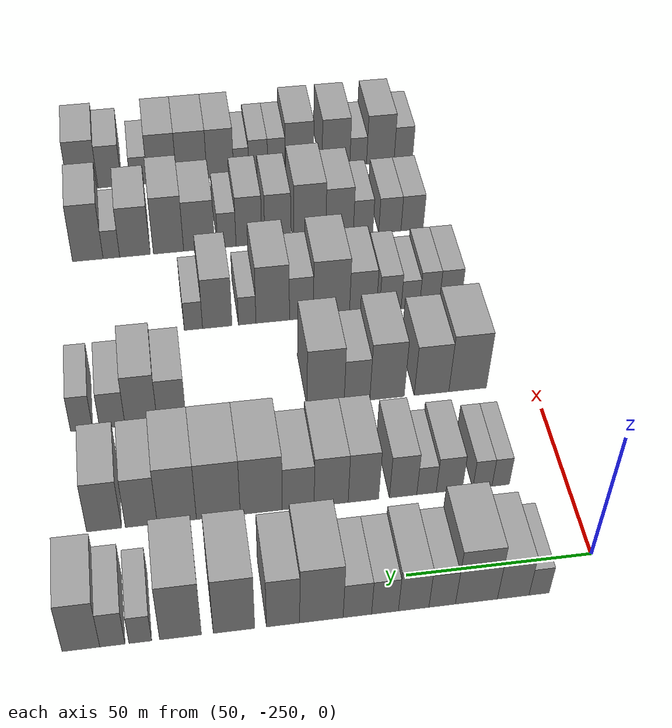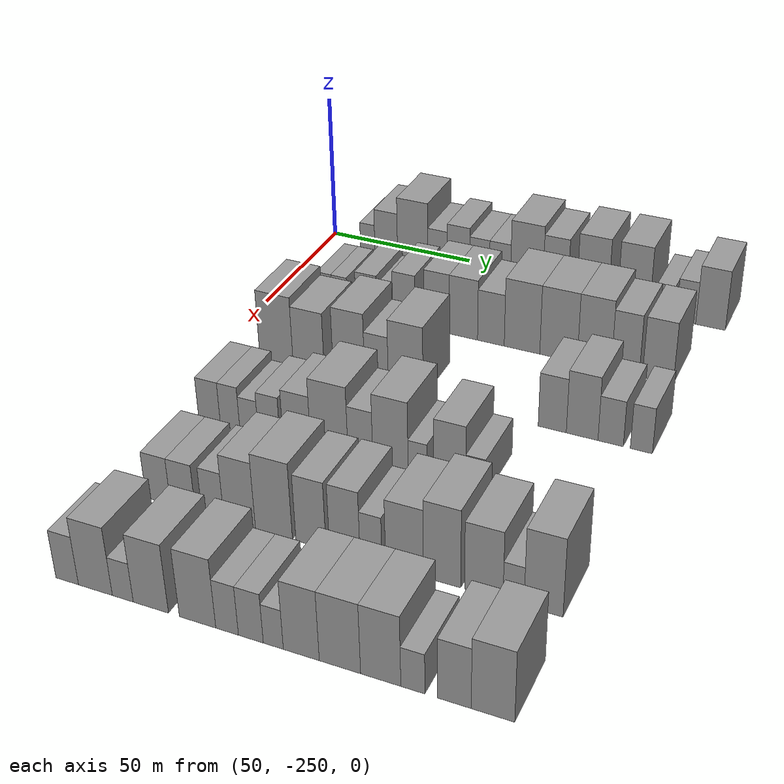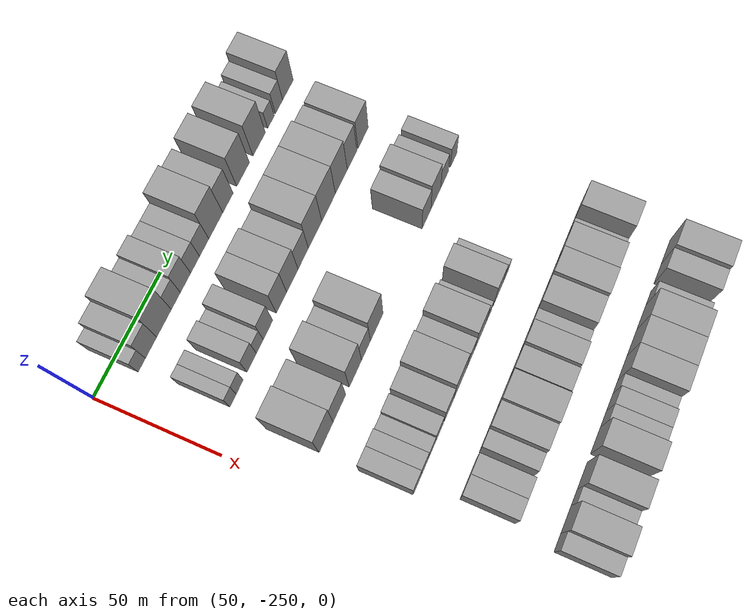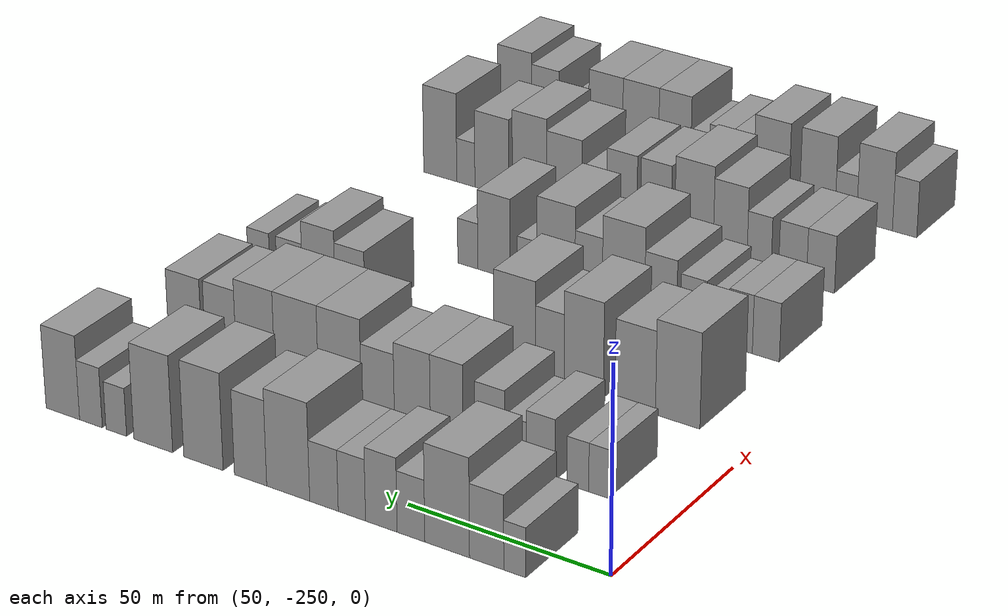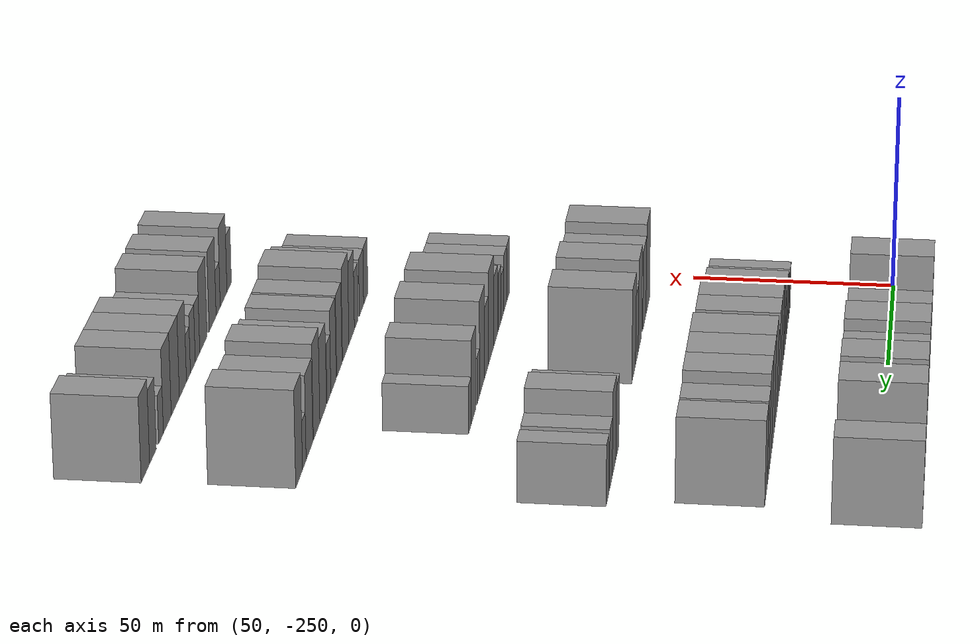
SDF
<sdf version="1.6">
 <world name="default">
  <model name="building_34">
   <static>1</static>
   <pose>50.0000 -233.0142 0 0.000000 0.000000 0.000000</pose>
   <link name="link">
    <pose>0 0 6.00 0 0 0</pose>
    <collision name="collision"><geometry><box><size>20.0000 5.3620 12.0000</size></box></geometry></collision>
    <visual name="visual">
     <cast_shadows>0</cast_shadows>
     <geometry><box><size>20.0000 5.3620 12.0000</size></box></geometry>
     <material>
      <script>
       <uri>model://grey_wall/materials/scripts</uri>
       <uri>model://grey_wall/materials/textures</uri>
       <name>vrc/grey_wall</name>
      </script>
     </material>
    </visual>
   </link>
  </model>
  <model name="building_35">
   <static>1</static>
   <pose>50.0000 -226.1422 0 0.000000 0.000000 0.000000</pose>
   <link name="link">
    <pose>0 0 9.00 0 0 0</pose>
    <collision name="collision"><geometry><box><size>20.0000 8.3820 18.0000</size></box></geometry></collision>
    <visual name="visual">
     <cast_shadows>0</cast_shadows>
     <geometry><box><size>20.0000 8.3820 18.0000</size></box></geometry>
     <material>
      <script>
       <uri>model://grey_wall/materials/scripts</uri>
       <uri>model://grey_wall/materials/textures</uri>
       <name>vrc/grey_wall</name>
      </script>
     </material>
    </visual>
   </link>
  </model>
  <model name="building_36">
   <static>1</static>
   <pose>50.0000 -216.4111 0 0.000000 0.000000 0.000000</pose>
   <link name="link">
    <pose>0 0 12.00 0 0 0</pose>
    <collision name="collision"><geometry><box><size>20.0000 11.0804 24.0000</size></box></geometry></collision>
    <visual name="visual">
     <cast_shadows>0</cast_shadows>
     <geometry><box><size>20.0000 11.0804 24.0000</size></box></geometry>
     <material>
      <script>
       <uri>model://grey_wall/materials/scripts</uri>
       <uri>model://grey_wall/materials/textures</uri>
       <name>vrc/grey_wall</name>
      </script>
     </material>
    </visual>
   </link>
  </model>
  <model name="building_37">
   <static>1</static>
   <pose>50.0000 -207.3943 0 0.000000 0.000000 0.000000</pose>
   <link name="link">
    <pose>0 0 7.50 0 0 0</pose>
    <collision name="collision"><geometry><box><size>20.0000 6.9532 15.0000</size></box></geometry></collision>
    <visual name="visual">
     <cast_shadows>0</cast_shadows>
     <geometry><box><size>20.0000 6.9532 15.0000</size></box></geometry>
     <material>
      <script>
       <uri>model://grey_wall/materials/scripts</uri>
       <uri>model://grey_wall/materials/textures</uri>
       <name>vrc/grey_wall</name>
      </script>
     </material>
    </visual>
   </link>
  </model>
  <model name="building_38">
   <static>1</static>
   <pose>50.0000 -199.9215 0 0.000000 0.000000 0.000000</pose>
   <link name="link">
    <pose>0 0 9.00 0 0 0</pose>
    <collision name="collision"><geometry><box><size>20.0000 7.9923 18.0000</size></box></geometry></collision>
    <visual name="visual">
     <cast_shadows>0</cast_shadows>
     <geometry><box><size>20.0000 7.9923 18.0000</size></box></geometry>
     <material>
      <script>
       <uri>model://grey_wall/materials/scripts</uri>
       <uri>model://grey_wall/materials/textures</uri>
       <name>vrc/grey_wall</name>
      </script>
     </material>
    </visual>
   </link>
  </model>
  <model name="building_39">
   <static>1</static>
   <pose>50.0000 -192.4334 0 0.000000 0.000000 0.000000</pose>
   <link name="link">
    <pose>0 0 7.50 0 0 0</pose>
    <collision name="collision"><geometry><box><size>20.0000 6.9839 15.0000</size></box></geometry></collision>
    <visual name="visual">
     <cast_shadows>0</cast_shadows>
     <geometry><box><size>20.0000 6.9839 15.0000</size></box></geometry>
     <material>
      <script>
       <uri>model://grey_wall/materials/scripts</uri>
       <uri>model://grey_wall/materials/textures</uri>
       <name>vrc/grey_wall</name>
      </script>
     </material>
    </visual>
   </link>
  </model>
  <model name="building_40">
   <static>1</static>
   <pose>50.0000 -185.2547 0 0.000000 0.000000 0.000000</pose>
   <link name="link">
    <pose>0 0 7.50 0 0 0</pose>
    <collision name="collision"><geometry><box><size>20.0000 7.3734 15.0000</size></box></geometry></collision>
    <visual name="visual">
     <cast_shadows>0</cast_shadows>
     <geometry><box><size>20.0000 7.3734 15.0000</size></box></geometry>
     <material>
      <script>
       <uri>model://grey_wall/materials/scripts</uri>
       <uri>model://grey_wall/materials/textures</uri>
       <name>vrc/grey_wall</name>
      </script>
     </material>
    </visual>
   </link>
  </model>
  <model name="building_41">
   <static>1</static>
   <pose>50.0000 -175.9584 0 0.000000 0.000000 0.000000</pose>
   <link name="link">
    <pose>0 0 12.00 0 0 0</pose>
    <collision name="collision"><geometry><box><size>20.0000 11.2193 24.0000</size></box></geometry></collision>
    <visual name="visual">
     <cast_shadows>0</cast_shadows>
     <geometry><box><size>20.0000 11.2193 24.0000</size></box></geometry>
     <material>
      <script>
       <uri>model://grey_wall/materials/scripts</uri>
       <uri>model://grey_wall/materials/textures</uri>
       <name>vrc/grey_wall</name>
      </script>
     </material>
    </visual>
   </link>
  </model>
  <model name="building_42">
   <static>1</static>
   <pose>50.0000 -166.0863 0 0.000000 0.000000 0.000000</pose>
   <link name="link">
    <pose>0 0 10.50 0 0 0</pose>
    <collision name="collision"><geometry><box><size>20.0000 8.5249 21.0000</size></box></geometry></collision>
    <visual name="visual">
     <cast_shadows>0</cast_shadows>
     <geometry><box><size>20.0000 8.5249 21.0000</size></box></geometry>
     <material>
      <script>
       <uri>model://grey_wall/materials/scripts</uri>
       <uri>model://grey_wall/materials/textures</uri>
       <name>vrc/grey_wall</name>
      </script>
     </material>
    </visual>
   </link>
  </model>
  <model name="building_43">
   <static>1</static>
   <pose>50.0000 -153.5417 0 0.000000 0.000000 0.000000</pose>
   <link name="link">
    <pose>0 0 12.00 0 0 0</pose>
    <collision name="collision"><geometry><box><size>20.0000 10.5641 24.0000</size></box></geometry></collision>
    <visual name="visual">
     <cast_shadows>0</cast_shadows>
     <geometry><box><size>20.0000 10.5641 24.0000</size></box></geometry>
     <material>
      <script>
       <uri>model://grey_wall/materials/scripts</uri>
       <uri>model://grey_wall/materials/textures</uri>
       <name>vrc/grey_wall</name>
      </script>
     </material>
    </visual>
   </link>
  </model>
  <model name="building_44">
   <static>1</static>
   <pose>50.0000 -139.9636 0 0.000000 0.000000 0.000000</pose>
   <link name="link">
    <pose>0 0 12.00 0 0 0</pose>
    <collision name="collision"><geometry><box><size>20.0000 10.5922 24.0000</size></box></geometry></collision>
    <visual name="visual">
     <cast_shadows>0</cast_shadows>
     <geometry><box><size>20.0000 10.5922 24.0000</size></box></geometry>
     <material>
      <script>
       <uri>model://grey_wall/materials/scripts</uri>
       <uri>model://grey_wall/materials/textures</uri>
       <name>vrc/grey_wall</name>
      </script>
     </material>
    </visual>
   </link>
  </model>
  <model name="building_45">
   <static>1</static>
   <pose>50.0000 -129.8153 0 0.000000 0.000000 0.000000</pose>
   <link name="link">
    <pose>0 0 6.00 0 0 0</pose>
    <collision name="collision"><geometry><box><size>20.0000 5.7045 12.0000</size></box></geometry></collision>
    <visual name="visual">
     <cast_shadows>0</cast_shadows>
     <geometry><box><size>20.0000 5.7045 12.0000</size></box></geometry>
     <material>
      <script>
       <uri>model://grey_wall/materials/scripts</uri>
       <uri>model://grey_wall/materials/textures</uri>
       <name>vrc/grey_wall</name>
      </script>
     </material>
    </visual>
   </link>
  </model>
  <model name="building_46">
   <static>1</static>
   <pose>50.0000 -122.7985 0 0.000000 0.000000 0.000000</pose>
   <link name="link">
    <pose>0 0 7.50 0 0 0</pose>
    <collision name="collision"><geometry><box><size>20.0000 6.3290 15.0000</size></box></geometry></collision>
    <visual name="visual">
     <cast_shadows>0</cast_shadows>
     <geometry><box><size>20.0000 6.3290 15.0000</size></box></geometry>
     <material>
      <script>
       <uri>model://grey_wall/materials/scripts</uri>
       <uri>model://grey_wall/materials/textures</uri>
       <name>vrc/grey_wall</name>
      </script>
     </material>
    </visual>
   </link>
  </model>
  <model name="building_47">
   <static>1</static>
   <pose>50.0000 -114.9309 0 0.000000 0.000000 0.000000</pose>
   <link name="link">
    <pose>0 0 10.50 0 0 0</pose>
    <collision name="collision"><geometry><box><size>20.0000 9.4061 21.0000</size></box></geometry></collision>
    <visual name="visual">
     <cast_shadows>0</cast_shadows>
     <geometry><box><size>20.0000 9.4061 21.0000</size></box></geometry>
     <material>
      <script>
       <uri>model://grey_wall/materials/scripts</uri>
       <uri>model://grey_wall/materials/textures</uri>
       <name>vrc/grey_wall</name>
      </script>
     </material>
    </visual>
   </link>
  </model>
  <model name="building_157">
   <static>1</static>
   <pose>85.0000 -231.4846 0 0.000000 0.000000 0.000000</pose>
   <link name="link">
    <pose>0 0 6.00 0 0 0</pose>
    <collision name="collision"><geometry><box><size>20.0000 4.9145 12.0000</size></box></geometry></collision>
    <visual name="visual">
     <cast_shadows>0</cast_shadows>
     <geometry><box><size>20.0000 4.9145 12.0000</size></box></geometry>
     <material>
      <script>
       <uri>model://grey_wall/materials/scripts</uri>
       <uri>model://grey_wall/materials/textures</uri>
       <name>vrc/grey_wall</name>
      </script>
     </material>
    </visual>
   </link>
  </model>
  <model name="building_158">
   <static>1</static>
   <pose>85.0000 -226.3136 0 0.000000 0.000000 0.000000</pose>
   <link name="link">
    <pose>0 0 6.00 0 0 0</pose>
    <collision name="collision"><geometry><box><size>20.0000 5.4275 12.0000</size></box></geometry></collision>
    <visual name="visual">
     <cast_shadows>0</cast_shadows>
     <geometry><box><size>20.0000 5.4275 12.0000</size></box></geometry>
     <material>
      <script>
       <uri>model://grey_wall/materials/scripts</uri>
       <uri>model://grey_wall/materials/textures</uri>
       <name>vrc/grey_wall</name>
      </script>
     </material>
    </visual>
   </link>
  </model>
  <model name="building_159">
   <static>1</static>
   <pose>85.0000 -216.9307 0 0.000000 0.000000 0.000000</pose>
   <link name="link">
    <pose>0 0 7.50 0 0 0</pose>
    <collision name="collision"><geometry><box><size>20.0000 7.3382 15.0000</size></box></geometry></collision>
    <visual name="visual">
     <cast_shadows>0</cast_shadows>
     <geometry><box><size>20.0000 7.3382 15.0000</size></box></geometry>
     <material>
      <script>
       <uri>model://grey_wall/materials/scripts</uri>
       <uri>model://grey_wall/materials/textures</uri>
       <name>vrc/grey_wall</name>
      </script>
     </material>
    </visual>
   </link>
  </model>
  <model name="building_160">
   <static>1</static>
   <pose>85.0000 -210.5316 0 0.000000 0.000000 0.000000</pose>
   <link name="link">
    <pose>0 0 6.00 0 0 0</pose>
    <collision name="collision"><geometry><box><size>20.0000 5.4600 12.0000</size></box></geometry></collision>
    <visual name="visual">
     <cast_shadows>0</cast_shadows>
     <geometry><box><size>20.0000 5.4600 12.0000</size></box></geometry>
     <material>
      <script>
       <uri>model://grey_wall/materials/scripts</uri>
       <uri>model://grey_wall/materials/textures</uri>
       <name>vrc/grey_wall</name>
      </script>
     </material>
    </visual>
   </link>
  </model>
  <model name="building_161">
   <static>1</static>
   <pose>85.0000 -203.9703 0 0.000000 0.000000 0.000000</pose>
   <link name="link">
    <pose>0 0 9.00 0 0 0</pose>
    <collision name="collision"><geometry><box><size>20.0000 7.6626 18.0000</size></box></geometry></collision>
    <visual name="visual">
     <cast_shadows>0</cast_shadows>
     <geometry><box><size>20.0000 7.6626 18.0000</size></box></geometry>
     <material>
      <script>
       <uri>model://grey_wall/materials/scripts</uri>
       <uri>model://grey_wall/materials/textures</uri>
       <name>vrc/grey_wall</name>
      </script>
     </material>
    </visual>
   </link>
  </model>
  <model name="building_162">
   <static>1</static>
   <pose>85.0000 -192.8932 0 0.000000 0.000000 0.000000</pose>
   <link name="link">
    <pose>0 0 10.50 0 0 0</pose>
    <collision name="collision"><geometry><box><size>20.0000 8.4915 21.0000</size></box></geometry></collision>
    <visual name="visual">
     <cast_shadows>0</cast_shadows>
     <geometry><box><size>20.0000 8.4915 21.0000</size></box></geometry>
     <material>
      <script>
       <uri>model://grey_wall/materials/scripts</uri>
       <uri>model://grey_wall/materials/textures</uri>
       <name>vrc/grey_wall</name>
      </script>
     </material>
    </visual>
   </link>
  </model>
  <model name="building_163">
   <static>1</static>
   <pose>85.0000 -183.9180 0 0.000000 0.000000 0.000000</pose>
   <link name="link">
    <pose>0 0 10.50 0 0 0</pose>
    <collision name="collision"><geometry><box><size>20.0000 9.4588 21.0000</size></box></geometry></collision>
    <visual name="visual">
     <cast_shadows>0</cast_shadows>
     <geometry><box><size>20.0000 9.4588 21.0000</size></box></geometry>
     <material>
      <script>
       <uri>model://grey_wall/materials/scripts</uri>
       <uri>model://grey_wall/materials/textures</uri>
       <name>vrc/grey_wall</name>
      </script>
     </material>
    </visual>
   </link>
  </model>
  <model name="building_164">
   <static>1</static>
   <pose>85.0000 -174.8004 0 0.000000 0.000000 0.000000</pose>
   <link name="link">
    <pose>0 0 9.00 0 0 0</pose>
    <collision name="collision"><geometry><box><size>20.0000 8.7764 18.0000</size></box></geometry></collision>
    <visual name="visual">
     <cast_shadows>0</cast_shadows>
     <geometry><box><size>20.0000 8.7764 18.0000</size></box></geometry>
     <material>
      <script>
       <uri>model://grey_wall/materials/scripts</uri>
       <uri>model://grey_wall/materials/textures</uri>
       <name>vrc/grey_wall</name>
      </script>
     </material>
    </visual>
   </link>
  </model>
  <model name="building_165">
   <static>1</static>
   <pose>85.0000 -164.6567 0 0.000000 0.000000 0.000000</pose>
   <link name="link">
    <pose>0 0 12.00 0 0 0</pose>
    <collision name="collision"><geometry><box><size>20.0000 11.5110 24.0000</size></box></geometry></collision>
    <visual name="visual">
     <cast_shadows>0</cast_shadows>
     <geometry><box><size>20.0000 11.5110 24.0000</size></box></geometry>
     <material>
      <script>
       <uri>model://grey_wall/materials/scripts</uri>
       <uri>model://grey_wall/materials/textures</uri>
       <name>vrc/grey_wall</name>
      </script>
     </material>
    </visual>
   </link>
  </model>
  <model name="building_166">
   <static>1</static>
   <pose>85.0000 -152.9327 0 0.000000 0.000000 0.000000</pose>
   <link name="link">
    <pose>0 0 12.00 0 0 0</pose>
    <collision name="collision"><geometry><box><size>20.0000 11.9370 24.0000</size></box></geometry></collision>
    <visual name="visual">
     <cast_shadows>0</cast_shadows>
     <geometry><box><size>20.0000 11.9370 24.0000</size></box></geometry>
     <material>
      <script>
       <uri>model://grey_wall/materials/scripts</uri>
       <uri>model://grey_wall/materials/textures</uri>
       <name>vrc/grey_wall</name>
      </script>
     </material>
    </visual>
   </link>
  </model>
  <model name="building_167">
   <static>1</static>
   <pose>85.0000 -141.6560 0 0.000000 0.000000 0.000000</pose>
   <link name="link">
    <pose>0 0 12.00 0 0 0</pose>
    <collision name="collision"><geometry><box><size>20.0000 10.6163 24.0000</size></box></geometry></collision>
    <visual name="visual">
     <cast_shadows>0</cast_shadows>
     <geometry><box><size>20.0000 10.6163 24.0000</size></box></geometry>
     <material>
      <script>
       <uri>model://grey_wall/materials/scripts</uri>
       <uri>model://grey_wall/materials/textures</uri>
       <name>vrc/grey_wall</name>
      </script>
     </material>
    </visual>
   </link>
  </model>
  <model name="building_168">
   <static>1</static>
   <pose>85.0000 -132.0369 0 0.000000 0.000000 0.000000</pose>
   <link name="link">
    <pose>0 0 10.50 0 0 0</pose>
    <collision name="collision"><geometry><box><size>20.0000 8.6219 21.0000</size></box></geometry></collision>
    <visual name="visual">
     <cast_shadows>0</cast_shadows>
     <geometry><box><size>20.0000 8.6219 21.0000</size></box></geometry>
     <material>
      <script>
       <uri>model://grey_wall/materials/scripts</uri>
       <uri>model://grey_wall/materials/textures</uri>
       <name>vrc/grey_wall</name>
      </script>
     </material>
    </visual>
   </link>
  </model>
  <model name="building_169">
   <static>1</static>
   <pose>85.0000 -122.0261 0 0.000000 0.000000 0.000000</pose>
   <link name="link">
    <pose>0 0 10.50 0 0 0</pose>
    <collision name="collision"><geometry><box><size>20.0000 9.3999 21.0000</size></box></geometry></collision>
    <visual name="visual">
     <cast_shadows>0</cast_shadows>
     <geometry><box><size>20.0000 9.3999 21.0000</size></box></geometry>
     <material>
      <script>
       <uri>model://grey_wall/materials/scripts</uri>
       <uri>model://grey_wall/materials/textures</uri>
       <name>vrc/grey_wall</name>
      </script>
     </material>
    </visual>
   </link>
  </model>
  <model name="building_282">
   <static>1</static>
   <pose>120.0000 -230.1667 0 0.000000 0.000000 0.000000</pose>
   <link name="link">
    <pose>0 0 12.00 0 0 0</pose>
    <collision name="collision"><geometry><box><size>20.0000 11.3048 24.0000</size></box></geometry></collision>
    <visual name="visual">
     <cast_shadows>0</cast_shadows>
     <geometry><box><size>20.0000 11.3048 24.0000</size></box></geometry>
     <material>
      <script>
       <uri>model://grey_wall/materials/scripts</uri>
       <uri>model://grey_wall/materials/textures</uri>
       <name>vrc/grey_wall</name>
      </script>
     </material>
    </visual>
   </link>
  </model>
  <model name="building_283">
   <static>1</static>
   <pose>120.0000 -219.3203 0 0.000000 0.000000 0.000000</pose>
   <link name="link">
    <pose>0 0 10.50 0 0 0</pose>
    <collision name="collision"><geometry><box><size>20.0000 10.3879 21.0000</size></box></geometry></collision>
    <visual name="visual">
     <cast_shadows>0</cast_shadows>
     <geometry><box><size>20.0000 10.3879 21.0000</size></box></geometry>
     <material>
      <script>
       <uri>model://grey_wall/materials/scripts</uri>
       <uri>model://grey_wall/materials/textures</uri>
       <name>vrc/grey_wall</name>
      </script>
     </material>
    </visual>
   </link>
  </model>
  <model name="building_284">
   <static>1</static>
   <pose>120.0000 -205.9946 0 0.000000 0.000000 0.000000</pose>
   <link name="link">
    <pose>0 0 12.00 0 0 0</pose>
    <collision name="collision"><geometry><box><size>20.0000 10.2636 24.0000</size></box></geometry></collision>
    <visual name="visual">
     <cast_shadows>0</cast_shadows>
     <geometry><box><size>20.0000 10.2636 24.0000</size></box></geometry>
     <material>
      <script>
       <uri>model://grey_wall/materials/scripts</uri>
       <uri>model://grey_wall/materials/textures</uri>
       <name>vrc/grey_wall</name>
      </script>
     </material>
    </visual>
   </link>
  </model>
  <model name="building_285">
   <static>1</static>
   <pose>120.0000 -197.0527 0 0.000000 0.000000 0.000000</pose>
   <link name="link">
    <pose>0 0 9.00 0 0 0</pose>
    <collision name="collision"><geometry><box><size>20.0000 7.6201 18.0000</size></box></geometry></collision>
    <visual name="visual">
     <cast_shadows>0</cast_shadows>
     <geometry><box><size>20.0000 7.6201 18.0000</size></box></geometry>
     <material>
      <script>
       <uri>model://grey_wall/materials/scripts</uri>
       <uri>model://grey_wall/materials/textures</uri>
       <name>vrc/grey_wall</name>
      </script>
     </material>
    </visual>
   </link>
  </model>
  <model name="building_286">
   <static>1</static>
   <pose>120.0000 -187.7333 0 0.000000 0.000000 0.000000</pose>
   <link name="link">
    <pose>0 0 12.00 0 0 0</pose>
    <collision name="collision"><geometry><box><size>20.0000 11.0187 24.0000</size></box></geometry></collision>
    <visual name="visual">
     <cast_shadows>0</cast_shadows>
     <geometry><box><size>20.0000 11.0187 24.0000</size></box></geometry>
     <material>
      <script>
       <uri>model://grey_wall/materials/scripts</uri>
       <uri>model://grey_wall/materials/textures</uri>
       <name>vrc/grey_wall</name>
      </script>
     </material>
    </visual>
   </link>
  </model>
  <model name="building_287">
   <static>1</static>
   <pose>120.0000 -142.7422 0 0.000000 0.000000 0.000000</pose>
   <link name="link">
    <pose>0 0 9.00 0 0 0</pose>
    <collision name="collision"><geometry><box><size>20.0000 8.3212 18.0000</size></box></geometry></collision>
    <visual name="visual">
     <cast_shadows>0</cast_shadows>
     <geometry><box><size>20.0000 8.3212 18.0000</size></box></geometry>
     <material>
      <script>
       <uri>model://grey_wall/materials/scripts</uri>
       <uri>model://grey_wall/materials/textures</uri>
       <name>vrc/grey_wall</name>
      </script>
     </material>
    </visual>
   </link>
  </model>
  <model name="building_288">
   <static>1</static>
   <pose>120.0000 -133.9527 0 0.000000 0.000000 0.000000</pose>
   <link name="link">
    <pose>0 0 10.50 0 0 0</pose>
    <collision name="collision"><geometry><box><size>20.0000 9.2579 21.0000</size></box></geometry></collision>
    <visual name="visual">
     <cast_shadows>0</cast_shadows>
     <geometry><box><size>20.0000 9.2579 21.0000</size></box></geometry>
     <material>
      <script>
       <uri>model://grey_wall/materials/scripts</uri>
       <uri>model://grey_wall/materials/textures</uri>
       <name>vrc/grey_wall</name>
      </script>
     </material>
    </visual>
   </link>
  </model>
  <model name="building_289">
   <static>1</static>
   <pose>120.0000 -125.6674 0 0.000000 0.000000 0.000000</pose>
   <link name="link">
    <pose>0 0 7.50 0 0 0</pose>
    <collision name="collision"><geometry><box><size>20.0000 7.3127 15.0000</size></box></geometry></collision>
    <visual name="visual">
     <cast_shadows>0</cast_shadows>
     <geometry><box><size>20.0000 7.3127 15.0000</size></box></geometry>
     <material>
      <script>
       <uri>model://grey_wall/materials/scripts</uri>
       <uri>model://grey_wall/materials/textures</uri>
       <name>vrc/grey_wall</name>
      </script>
     </material>
    </visual>
   </link>
  </model>
  <model name="building_290">
   <static>1</static>
   <pose>120.0000 -116.8660 0 0.000000 0.000000 0.000000</pose>
   <link name="link">
    <pose>0 0 7.50 0 0 0</pose>
    <collision name="collision"><geometry><box><size>20.0000 6.2902 15.0000</size></box></geometry></collision>
    <visual name="visual">
     <cast_shadows>0</cast_shadows>
     <geometry><box><size>20.0000 6.2902 15.0000</size></box></geometry>
     <material>
      <script>
       <uri>model://grey_wall/materials/scripts</uri>
       <uri>model://grey_wall/materials/textures</uri>
       <name>vrc/grey_wall</name>
      </script>
     </material>
    </visual>
   </link>
  </model>
  <model name="building_401">
   <static>1</static>
   <pose>155.0000 -232.5621 0 0.000000 0.000000 0.000000</pose>
   <link name="link">
    <pose>0 0 7.50 0 0 0</pose>
    <collision name="collision"><geometry><box><size>20.0000 6.9869 15.0000</size></box></geometry></collision>
    <visual name="visual">
     <cast_shadows>0</cast_shadows>
     <geometry><box><size>20.0000 6.9869 15.0000</size></box></geometry>
     <material>
      <script>
       <uri>model://grey_wall/materials/scripts</uri>
       <uri>model://grey_wall/materials/textures</uri>
       <name>vrc/grey_wall</name>
      </script>
     </material>
    </visual>
   </link>
  </model>
  <model name="building_402">
   <static>1</static>
   <pose>155.0000 -225.9506 0 0.000000 0.000000 0.000000</pose>
   <link name="link">
    <pose>0 0 7.50 0 0 0</pose>
    <collision name="collision"><geometry><box><size>20.0000 6.2360 15.0000</size></box></geometry></collision>
    <visual name="visual">
     <cast_shadows>0</cast_shadows>
     <geometry><box><size>20.0000 6.2360 15.0000</size></box></geometry>
     <material>
      <script>
       <uri>model://grey_wall/materials/scripts</uri>
       <uri>model://grey_wall/materials/textures</uri>
       <name>vrc/grey_wall</name>
      </script>
     </material>
    </visual>
   </link>
  </model>
  <model name="building_403">
   <static>1</static>
   <pose>155.0000 -219.9020 0 0.000000 0.000000 0.000000</pose>
   <link name="link">
    <pose>0 0 6.00 0 0 0</pose>
    <collision name="collision"><geometry><box><size>20.0000 5.8613 12.0000</size></box></geometry></collision>
    <visual name="visual">
     <cast_shadows>0</cast_shadows>
     <geometry><box><size>20.0000 5.8613 12.0000</size></box></geometry>
     <material>
      <script>
       <uri>model://grey_wall/materials/scripts</uri>
       <uri>model://grey_wall/materials/textures</uri>
       <name>vrc/grey_wall</name>
      </script>
     </material>
    </visual>
   </link>
  </model>
  <model name="building_404">
   <static>1</static>
   <pose>155.0000 -213.5526 0 0.000000 0.000000 0.000000</pose>
   <link name="link">
    <pose>0 0 7.50 0 0 0</pose>
    <collision name="collision"><geometry><box><size>20.0000 6.8376 15.0000</size></box></geometry></collision>
    <visual name="visual">
     <cast_shadows>0</cast_shadows>
     <geometry><box><size>20.0000 6.8376 15.0000</size></box></geometry>
     <material>
      <script>
       <uri>model://grey_wall/materials/scripts</uri>
       <uri>model://grey_wall/materials/textures</uri>
       <name>vrc/grey_wall</name>
      </script>
     </material>
    </visual>
   </link>
  </model>
  <model name="building_405">
   <static>1</static>
   <pose>155.0000 -204.8724 0 0.000000 0.000000 0.000000</pose>
   <link name="link">
    <pose>0 0 9.00 0 0 0</pose>
    <collision name="collision"><geometry><box><size>20.0000 8.5228 18.0000</size></box></geometry></collision>
    <visual name="visual">
     <cast_shadows>0</cast_shadows>
     <geometry><box><size>20.0000 8.5228 18.0000</size></box></geometry>
     <material>
      <script>
       <uri>model://grey_wall/materials/scripts</uri>
       <uri>model://grey_wall/materials/textures</uri>
       <name>vrc/grey_wall</name>
      </script>
     </material>
    </visual>
   </link>
  </model>
  <model name="building_406">
   <static>1</static>
   <pose>155.0000 -194.9114 0 0.000000 0.000000 0.000000</pose>
   <link name="link">
    <pose>0 0 12.00 0 0 0</pose>
    <collision name="collision"><geometry><box><size>20.0000 11.3991 24.0000</size></box></geometry></collision>
    <visual name="visual">
     <cast_shadows>0</cast_shadows>
     <geometry><box><size>20.0000 11.3991 24.0000</size></box></geometry>
     <material>
      <script>
       <uri>model://grey_wall/materials/scripts</uri>
       <uri>model://grey_wall/materials/textures</uri>
       <name>vrc/grey_wall</name>
      </script>
     </material>
    </visual>
   </link>
  </model>
  <model name="building_407">
   <static>1</static>
   <pose>155.0000 -185.4858 0 0.000000 0.000000 0.000000</pose>
   <link name="link">
    <pose>0 0 9.00 0 0 0</pose>
    <collision name="collision"><geometry><box><size>20.0000 7.4521 18.0000</size></box></geometry></collision>
    <visual name="visual">
     <cast_shadows>0</cast_shadows>
     <geometry><box><size>20.0000 7.4521 18.0000</size></box></geometry>
     <material>
      <script>
       <uri>model://grey_wall/materials/scripts</uri>
       <uri>model://grey_wall/materials/textures</uri>
       <name>vrc/grey_wall</name>
      </script>
     </material>
    </visual>
   </link>
  </model>
  <model name="building_408">
   <static>1</static>
   <pose>155.0000 -176.5495 0 0.000000 0.000000 0.000000</pose>
   <link name="link">
    <pose>0 0 12.00 0 0 0</pose>
    <collision name="collision"><geometry><box><size>20.0000 10.4205 24.0000</size></box></geometry></collision>
    <visual name="visual">
     <cast_shadows>0</cast_shadows>
     <geometry><box><size>20.0000 10.4205 24.0000</size></box></geometry>
     <material>
      <script>
       <uri>model://grey_wall/materials/scripts</uri>
       <uri>model://grey_wall/materials/textures</uri>
       <name>vrc/grey_wall</name>
      </script>
     </material>
    </visual>
   </link>
  </model>
  <model name="building_409">
   <static>1</static>
   <pose>155.0000 -168.6185 0 0.000000 0.000000 0.000000</pose>
   <link name="link">
    <pose>0 0 6.00 0 0 0</pose>
    <collision name="collision"><geometry><box><size>20.0000 5.4416 12.0000</size></box></geometry></collision>
    <visual name="visual">
     <cast_shadows>0</cast_shadows>
     <geometry><box><size>20.0000 5.4416 12.0000</size></box></geometry>
     <material>
      <script>
       <uri>model://grey_wall/materials/scripts</uri>
       <uri>model://grey_wall/materials/textures</uri>
       <name>vrc/grey_wall</name>
      </script>
     </material>
    </visual>
   </link>
  </model>
  <model name="building_410">
   <static>1</static>
   <pose>155.0000 -159.3391 0 0.000000 0.000000 0.000000</pose>
   <link name="link">
    <pose>0 0 10.50 0 0 0</pose>
    <collision name="collision"><geometry><box><size>20.0000 9.1171 21.0000</size></box></geometry></collision>
    <visual name="visual">
     <cast_shadows>0</cast_shadows>
     <geometry><box><size>20.0000 9.1171 21.0000</size></box></geometry>
     <material>
      <script>
       <uri>model://grey_wall/materials/scripts</uri>
       <uri>model://grey_wall/materials/textures</uri>
       <name>vrc/grey_wall</name>
      </script>
     </material>
    </visual>
   </link>
  </model>
  <model name="building_411">
   <static>1</static>
   <pose>155.0000 -151.9649 0 0.000000 0.000000 0.000000</pose>
   <link name="link">
    <pose>0 0 6.00 0 0 0</pose>
    <collision name="collision"><geometry><box><size>20.0000 5.6314 12.0000</size></box></geometry></collision>
    <visual name="visual">
     <cast_shadows>0</cast_shadows>
     <geometry><box><size>20.0000 5.6314 12.0000</size></box></geometry>
     <material>
      <script>
       <uri>model://grey_wall/materials/scripts</uri>
       <uri>model://grey_wall/materials/textures</uri>
       <name>vrc/grey_wall</name>
      </script>
     </material>
    </visual>
   </link>
  </model>
  <model name="building_525">
   <static>1</static>
   <pose>190.0000 -227.4371 0 0.000000 0.000000 0.000000</pose>
   <link name="link">
    <pose>0 0 7.50 0 0 0</pose>
    <collision name="collision"><geometry><box><size>20.0000 7.4598 15.0000</size></box></geometry></collision>
    <visual name="visual">
     <cast_shadows>0</cast_shadows>
     <geometry><box><size>20.0000 7.4598 15.0000</size></box></geometry>
     <material>
      <script>
       <uri>model://grey_wall/materials/scripts</uri>
       <uri>model://grey_wall/materials/textures</uri>
       <name>vrc/grey_wall</name>
      </script>
     </material>
    </visual>
   </link>
  </model>
  <model name="building_526">
   <static>1</static>
   <pose>190.0000 -219.9724 0 0.000000 0.000000 0.000000</pose>
   <link name="link">
    <pose>0 0 7.50 0 0 0</pose>
    <collision name="collision"><geometry><box><size>20.0000 7.4695 15.0000</size></box></geometry></collision>
    <visual name="visual">
     <cast_shadows>0</cast_shadows>
     <geometry><box><size>20.0000 7.4695 15.0000</size></box></geometry>
     <material>
      <script>
       <uri>model://grey_wall/materials/scripts</uri>
       <uri>model://grey_wall/materials/textures</uri>
       <name>vrc/grey_wall</name>
      </script>
     </material>
    </visual>
   </link>
  </model>
  <model name="building_527">
   <static>1</static>
   <pose>190.0000 -210.9669 0 0.000000 0.000000 0.000000</pose>
   <link name="link">
    <pose>0 0 7.50 0 0 0</pose>
    <collision name="collision"><geometry><box><size>20.0000 6.5417 15.0000</size></box></geometry></collision>
    <visual name="visual">
     <cast_shadows>0</cast_shadows>
     <geometry><box><size>20.0000 6.5417 15.0000</size></box></geometry>
     <material>
      <script>
       <uri>model://grey_wall/materials/scripts</uri>
       <uri>model://grey_wall/materials/textures</uri>
       <name>vrc/grey_wall</name>
      </script>
     </material>
    </visual>
   </link>
  </model>
  <model name="building_528">
   <static>1</static>
   <pose>190.0000 -203.0842 0 0.000000 0.000000 0.000000</pose>
   <link name="link">
    <pose>0 0 10.50 0 0 0</pose>
    <collision name="collision"><geometry><box><size>20.0000 9.2237 21.0000</size></box></geometry></collision>
    <visual name="visual">
     <cast_shadows>0</cast_shadows>
     <geometry><box><size>20.0000 9.2237 21.0000</size></box></geometry>
     <material>
      <script>
       <uri>model://grey_wall/materials/scripts</uri>
       <uri>model://grey_wall/materials/textures</uri>
       <name>vrc/grey_wall</name>
      </script>
     </material>
    </visual>
   </link>
  </model>
  <model name="building_529">
   <static>1</static>
   <pose>190.0000 -193.1553 0 0.000000 0.000000 0.000000</pose>
   <link name="link">
    <pose>0 0 12.00 0 0 0</pose>
    <collision name="collision"><geometry><box><size>20.0000 10.6341 24.0000</size></box></geometry></collision>
    <visual name="visual">
     <cast_shadows>0</cast_shadows>
     <geometry><box><size>20.0000 10.6341 24.0000</size></box></geometry>
     <material>
      <script>
       <uri>model://grey_wall/materials/scripts</uri>
       <uri>model://grey_wall/materials/textures</uri>
       <name>vrc/grey_wall</name>
      </script>
     </material>
    </visual>
   </link>
  </model>
  <model name="building_530">
   <static>1</static>
   <pose>190.0000 -182.5807 0 0.000000 0.000000 0.000000</pose>
   <link name="link">
    <pose>0 0 10.50 0 0 0</pose>
    <collision name="collision"><geometry><box><size>20.0000 8.5151 21.0000</size></box></geometry></collision>
    <visual name="visual">
     <cast_shadows>0</cast_shadows>
     <geometry><box><size>20.0000 8.5151 21.0000</size></box></geometry>
     <material>
      <script>
       <uri>model://grey_wall/materials/scripts</uri>
       <uri>model://grey_wall/materials/textures</uri>
       <name>vrc/grey_wall</name>
      </script>
     </material>
    </visual>
   </link>
  </model>
  <model name="building_531">
   <static>1</static>
   <pose>190.0000 -173.0953 0 0.000000 0.000000 0.000000</pose>
   <link name="link">
    <pose>0 0 10.50 0 0 0</pose>
    <collision name="collision"><geometry><box><size>20.0000 8.4557 21.0000</size></box></geometry></collision>
    <visual name="visual">
     <cast_shadows>0</cast_shadows>
     <geometry><box><size>20.0000 8.4557 21.0000</size></box></geometry>
     <material>
      <script>
       <uri>model://grey_wall/materials/scripts</uri>
       <uri>model://grey_wall/materials/textures</uri>
       <name>vrc/grey_wall</name>
      </script>
     </material>
    </visual>
   </link>
  </model>
  <model name="building_532">
   <static>1</static>
   <pose>190.0000 -165.8626 0 0.000000 0.000000 0.000000</pose>
   <link name="link">
    <pose>0 0 7.50 0 0 0</pose>
    <collision name="collision"><geometry><box><size>20.0000 6.0098 15.0000</size></box></geometry></collision>
    <visual name="visual">
     <cast_shadows>0</cast_shadows>
     <geometry><box><size>20.0000 6.0098 15.0000</size></box></geometry>
     <material>
      <script>
       <uri>model://grey_wall/materials/scripts</uri>
       <uri>model://grey_wall/materials/textures</uri>
       <name>vrc/grey_wall</name>
      </script>
     </material>
    </visual>
   </link>
  </model>
  <model name="building_533">
   <static>1</static>
   <pose>190.0000 -156.7784 0 0.000000 0.000000 0.000000</pose>
   <link name="link">
    <pose>0 0 10.50 0 0 0</pose>
    <collision name="collision"><geometry><box><size>20.0000 10.1585 21.0000</size></box></geometry></collision>
    <visual name="visual">
     <cast_shadows>0</cast_shadows>
     <geometry><box><size>20.0000 10.1585 21.0000</size></box></geometry>
     <material>
      <script>
       <uri>model://grey_wall/materials/scripts</uri>
       <uri>model://grey_wall/materials/textures</uri>
       <name>vrc/grey_wall</name>
      </script>
     </material>
    </visual>
   </link>
  </model>
  <model name="building_534">
   <static>1</static>
   <pose>190.0000 -146.7680 0 0.000000 0.000000 0.000000</pose>
   <link name="link">
    <pose>0 0 12.00 0 0 0</pose>
    <collision name="collision"><geometry><box><size>20.0000 9.8624 24.0000</size></box></geometry></collision>
    <visual name="visual">
     <cast_shadows>0</cast_shadows>
     <geometry><box><size>20.0000 9.8624 24.0000</size></box></geometry>
     <material>
      <script>
       <uri>model://grey_wall/materials/scripts</uri>
       <uri>model://grey_wall/materials/textures</uri>
       <name>vrc/grey_wall</name>
      </script>
     </material>
    </visual>
   </link>
  </model>
  <model name="building_535">
   <static>1</static>
   <pose>190.0000 -135.8597 0 0.000000 0.000000 0.000000</pose>
   <link name="link">
    <pose>0 0 10.50 0 0 0</pose>
    <collision name="collision"><geometry><box><size>20.0000 9.9542 21.0000</size></box></geometry></collision>
    <visual name="visual">
     <cast_shadows>0</cast_shadows>
     <geometry><box><size>20.0000 9.9542 21.0000</size></box></geometry>
     <material>
      <script>
       <uri>model://grey_wall/materials/scripts</uri>
       <uri>model://grey_wall/materials/textures</uri>
       <name>vrc/grey_wall</name>
      </script>
     </material>
    </visual>
   </link>
  </model>
  <model name="building_536">
   <static>1</static>
   <pose>190.0000 -128.2018 0 0.000000 0.000000 0.000000</pose>
   <link name="link">
    <pose>0 0 6.00 0 0 0</pose>
    <collision name="collision"><geometry><box><size>20.0000 5.3617 12.0000</size></box></geometry></collision>
    <visual name="visual">
     <cast_shadows>0</cast_shadows>
     <geometry><box><size>20.0000 5.3617 12.0000</size></box></geometry>
     <material>
      <script>
       <uri>model://grey_wall/materials/scripts</uri>
       <uri>model://grey_wall/materials/textures</uri>
       <name>vrc/grey_wall</name>
      </script>
     </material>
    </visual>
   </link>
  </model>
  <model name="building_537">
   <static>1</static>
   <pose>190.0000 -120.6065 0 0.000000 0.000000 0.000000</pose>
   <link name="link">
    <pose>0 0 12.00 0 0 0</pose>
    <collision name="collision"><geometry><box><size>20.0000 9.8288 24.0000</size></box></geometry></collision>
    <visual name="visual">
     <cast_shadows>0</cast_shadows>
     <geometry><box><size>20.0000 9.8288 24.0000</size></box></geometry>
     <material>
      <script>
       <uri>model://grey_wall/materials/scripts</uri>
       <uri>model://grey_wall/materials/textures</uri>
       <name>vrc/grey_wall</name>
      </script>
     </material>
    </visual>
   </link>
  </model>
  <model name="building_659">
   <static>1</static>
   <pose>225.0000 -231.2817 0 0.000000 0.000000 0.000000</pose>
   <link name="link">
    <pose>0 0 7.50 0 0 0</pose>
    <collision name="collision"><geometry><box><size>20.0000 6.5540 15.0000</size></box></geometry></collision>
    <visual name="visual">
     <cast_shadows>0</cast_shadows>
     <geometry><box><size>20.0000 6.5540 15.0000</size></box></geometry>
     <material>
      <script>
       <uri>model://grey_wall/materials/scripts</uri>
       <uri>model://grey_wall/materials/textures</uri>
       <name>vrc/grey_wall</name>
      </script>
     </material>
    </visual>
   </link>
  </model>
  <model name="building_660">
   <static>1</static>
   <pose>225.0000 -223.1368 0 0.000000 0.000000 0.000000</pose>
   <link name="link">
    <pose>0 0 10.50 0 0 0</pose>
    <collision name="collision"><geometry><box><size>20.0000 9.7358 21.0000</size></box></geometry></collision>
    <visual name="visual">
     <cast_shadows>0</cast_shadows>
     <geometry><box><size>20.0000 9.7358 21.0000</size></box></geometry>
     <material>
      <script>
       <uri>model://grey_wall/materials/scripts</uri>
       <uri>model://grey_wall/materials/textures</uri>
       <name>vrc/grey_wall</name>
      </script>
     </material>
    </visual>
   </link>
  </model>
  <model name="building_661">
   <static>1</static>
   <pose>225.0000 -215.3137 0 0.000000 0.000000 0.000000</pose>
   <link name="link">
    <pose>0 0 6.00 0 0 0</pose>
    <collision name="collision"><geometry><box><size>20.0000 5.9104 12.0000</size></box></geometry></collision>
    <visual name="visual">
     <cast_shadows>0</cast_shadows>
     <geometry><box><size>20.0000 5.9104 12.0000</size></box></geometry>
     <material>
      <script>
       <uri>model://grey_wall/materials/scripts</uri>
       <uri>model://grey_wall/materials/textures</uri>
       <name>vrc/grey_wall</name>
      </script>
     </material>
    </visual>
   </link>
  </model>
  <model name="building_662">
   <static>1</static>
   <pose>225.0000 -207.4429 0 0.000000 0.000000 0.000000</pose>
   <link name="link">
    <pose>0 0 10.50 0 0 0</pose>
    <collision name="collision"><geometry><box><size>20.0000 9.8313 21.0000</size></box></geometry></collision>
    <visual name="visual">
     <cast_shadows>0</cast_shadows>
     <geometry><box><size>20.0000 9.8313 21.0000</size></box></geometry>
     <material>
      <script>
       <uri>model://grey_wall/materials/scripts</uri>
       <uri>model://grey_wall/materials/textures</uri>
       <name>vrc/grey_wall</name>
      </script>
     </material>
    </visual>
   </link>
  </model>
  <model name="building_663">
   <static>1</static>
   <pose>225.0000 -194.5699 0 0.000000 0.000000 0.000000</pose>
   <link name="link">
    <pose>0 0 10.50 0 0 0</pose>
    <collision name="collision"><geometry><box><size>20.0000 9.9147 21.0000</size></box></geometry></collision>
    <visual name="visual">
     <cast_shadows>0</cast_shadows>
     <geometry><box><size>20.0000 9.9147 21.0000</size></box></geometry>
     <material>
      <script>
       <uri>model://grey_wall/materials/scripts</uri>
       <uri>model://grey_wall/materials/textures</uri>
       <name>vrc/grey_wall</name>
      </script>
     </material>
    </visual>
   </link>
  </model>
  <model name="building_664">
   <static>1</static>
   <pose>225.0000 -186.5803 0 0.000000 0.000000 0.000000</pose>
   <link name="link">
    <pose>0 0 7.50 0 0 0</pose>
    <collision name="collision"><geometry><box><size>20.0000 6.0646 15.0000</size></box></geometry></collision>
    <visual name="visual">
     <cast_shadows>0</cast_shadows>
     <geometry><box><size>20.0000 6.0646 15.0000</size></box></geometry>
     <material>
      <script>
       <uri>model://grey_wall/materials/scripts</uri>
       <uri>model://grey_wall/materials/textures</uri>
       <name>vrc/grey_wall</name>
      </script>
     </material>
    </visual>
   </link>
  </model>
  <model name="building_665">
   <static>1</static>
   <pose>225.0000 -180.2552 0 0.000000 0.000000 0.000000</pose>
   <link name="link">
    <pose>0 0 7.50 0 0 0</pose>
    <collision name="collision"><geometry><box><size>20.0000 6.5855 15.0000</size></box></geometry></collision>
    <visual name="visual">
     <cast_shadows>0</cast_shadows>
     <geometry><box><size>20.0000 6.5855 15.0000</size></box></geometry>
     <material>
      <script>
       <uri>model://grey_wall/materials/scripts</uri>
       <uri>model://grey_wall/materials/textures</uri>
       <name>vrc/grey_wall</name>
      </script>
     </material>
    </visual>
   </link>
  </model>
  <model name="building_666">
   <static>1</static>
   <pose>225.0000 -174.3447 0 0.000000 0.000000 0.000000</pose>
   <link name="link">
    <pose>0 0 6.00 0 0 0</pose>
    <collision name="collision"><geometry><box><size>20.0000 5.2355 12.0000</size></box></geometry></collision>
    <visual name="visual">
     <cast_shadows>0</cast_shadows>
     <geometry><box><size>20.0000 5.2355 12.0000</size></box></geometry>
     <material>
      <script>
       <uri>model://grey_wall/materials/scripts</uri>
       <uri>model://grey_wall/materials/textures</uri>
       <name>vrc/grey_wall</name>
      </script>
     </material>
    </visual>
   </link>
  </model>
  <model name="building_667">
   <static>1</static>
   <pose>225.0000 -167.0886 0 0.000000 0.000000 0.000000</pose>
   <link name="link">
    <pose>0 0 10.50 0 0 0</pose>
    <collision name="collision"><geometry><box><size>20.0000 9.2767 21.0000</size></box></geometry></collision>
    <visual name="visual">
     <cast_shadows>0</cast_shadows>
     <geometry><box><size>20.0000 9.2767 21.0000</size></box></geometry>
     <material>
      <script>
       <uri>model://grey_wall/materials/scripts</uri>
       <uri>model://grey_wall/materials/textures</uri>
       <name>vrc/grey_wall</name>
      </script>
     </material>
    </visual>
   </link>
  </model>
  <model name="building_668">
   <static>1</static>
   <pose>225.0000 -157.2203 0 0.000000 0.000000 0.000000</pose>
   <link name="link">
    <pose>0 0 10.50 0 0 0</pose>
    <collision name="collision"><geometry><box><size>20.0000 10.4599 21.0000</size></box></geometry></collision>
    <visual name="visual">
     <cast_shadows>0</cast_shadows>
     <geometry><box><size>20.0000 10.4599 21.0000</size></box></geometry>
     <material>
      <script>
       <uri>model://grey_wall/materials/scripts</uri>
       <uri>model://grey_wall/materials/textures</uri>
       <name>vrc/grey_wall</name>
      </script>
     </material>
    </visual>
   </link>
  </model>
  <model name="building_669">
   <static>1</static>
   <pose>225.0000 -147.0080 0 0.000000 0.000000 0.000000</pose>
   <link name="link">
    <pose>0 0 10.50 0 0 0</pose>
    <collision name="collision"><geometry><box><size>20.0000 9.9647 21.0000</size></box></geometry></collision>
    <visual name="visual">
     <cast_shadows>0</cast_shadows>
     <geometry><box><size>20.0000 9.9647 21.0000</size></box></geometry>
     <material>
      <script>
       <uri>model://grey_wall/materials/scripts</uri>
       <uri>model://grey_wall/materials/textures</uri>
       <name>vrc/grey_wall</name>
      </script>
     </material>
    </visual>
   </link>
  </model>
  <model name="building_670">
   <static>1</static>
   <pose>225.0000 -139.0854 0 0.000000 0.000000 0.000000</pose>
   <link name="link">
    <pose>0 0 6.00 0 0 0</pose>
    <collision name="collision"><geometry><box><size>20.0000 5.8803 12.0000</size></box></geometry></collision>
    <visual name="visual">
     <cast_shadows>0</cast_shadows>
     <geometry><box><size>20.0000 5.8803 12.0000</size></box></geometry>
     <material>
      <script>
       <uri>model://grey_wall/materials/scripts</uri>
       <uri>model://grey_wall/materials/textures</uri>
       <name>vrc/grey_wall</name>
      </script>
     </material>
    </visual>
   </link>
  </model>
  <model name="building_671">
   <static>1</static>
   <pose>225.0000 -129.1025 0 0.000000 0.000000 0.000000</pose>
   <link name="link">
    <pose>0 0 9.00 0 0 0</pose>
    <collision name="collision"><geometry><box><size>20.0000 8.0856 18.0000</size></box></geometry></collision>
    <visual name="visual">
     <cast_shadows>0</cast_shadows>
     <geometry><box><size>20.0000 8.0856 18.0000</size></box></geometry>
     <material>
      <script>
       <uri>model://grey_wall/materials/scripts</uri>
       <uri>model://grey_wall/materials/textures</uri>
       <name>vrc/grey_wall</name>
      </script>
     </material>
    </visual>
   </link>
  </model>
  <model name="building_672">
   <static>1</static>
   <pose>225.0000 -119.9460 0 0.000000 0.000000 0.000000</pose>
   <link name="link">
    <pose>0 0 10.50 0 0 0</pose>
    <collision name="collision"><geometry><box><size>20.0000 10.2273 21.0000</size></box></geometry></collision>
    <visual name="visual">
     <cast_shadows>0</cast_shadows>
     <geometry><box><size>20.0000 10.2273 21.0000</size></box></geometry>
     <material>
      <script>
       <uri>model://grey_wall/materials/scripts</uri>
       <uri>model://grey_wall/materials/textures</uri>
       <name>vrc/grey_wall</name>
      </script>
     </material>
    </visual>
   </link>
  </model>
 </world>
</sdf>
